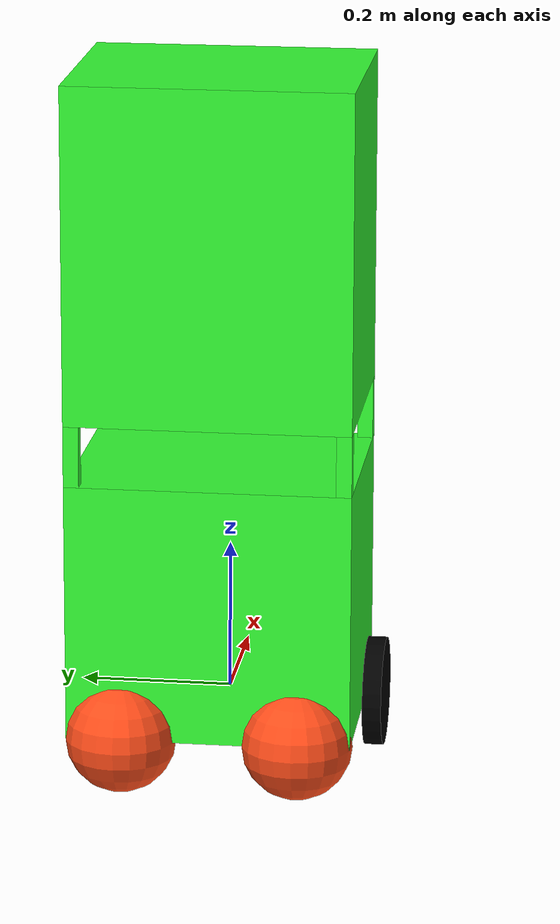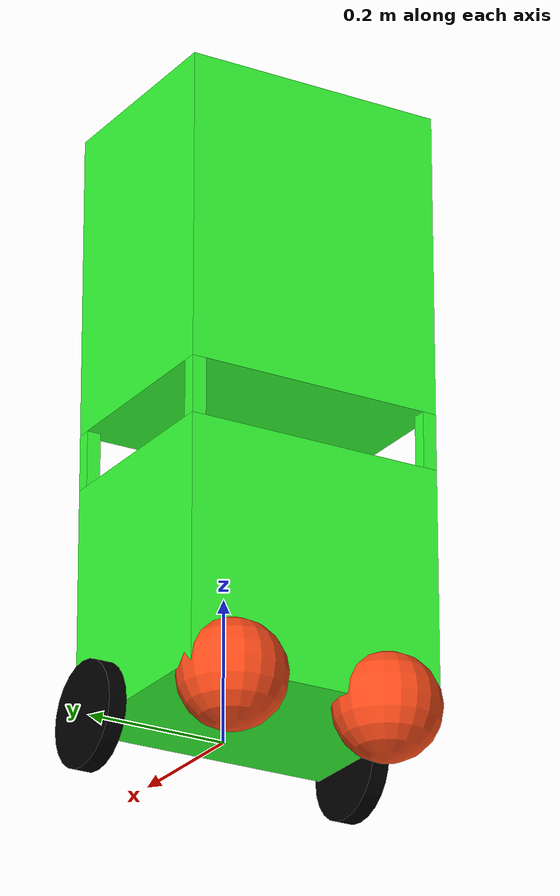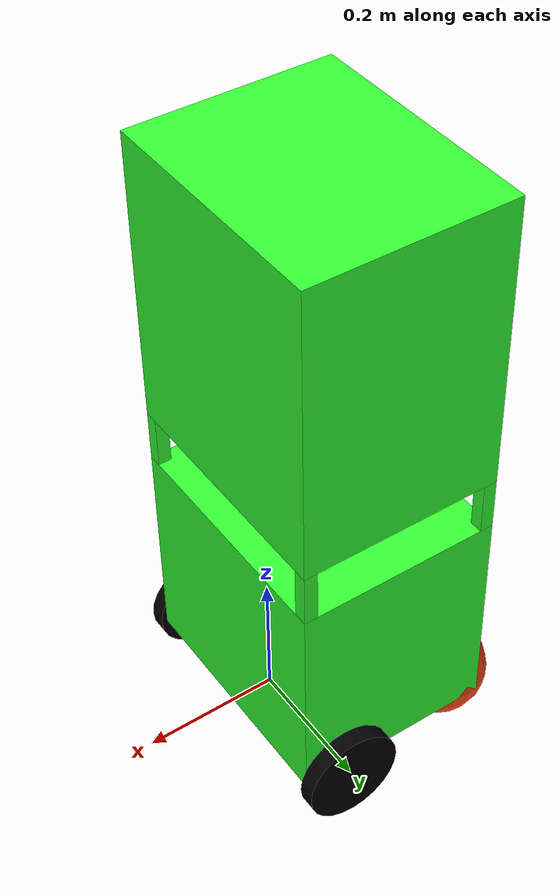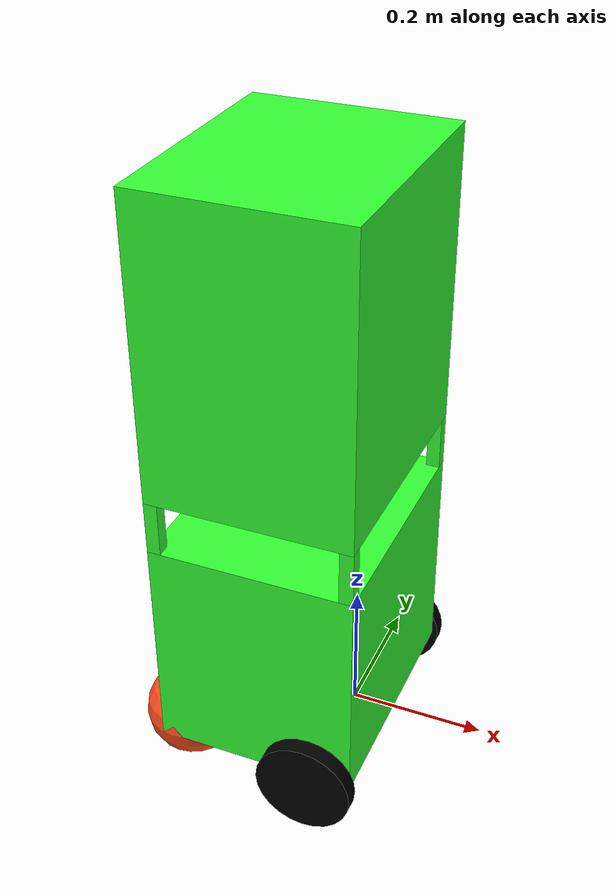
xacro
<?xml version="1.0"?>
<robot xmlns:xacro="http://www.ros.org/wiki/xacro">

    <xacro:include filename="inertial_macros.xacro"/>

    <material name="white">
        <color rgba="1 1 1 1"/>
    </material>

    <material name="black">
        <color rgba="0 0 0 1"/>
    </material>

    <material name="red">
        <color rgba="1 0.2 0.2 1"/>
    </material>

    <material name="blue">
        <color rgba="0.2 0.2 1 1"/>
    </material>

    <material name="green">
        <color rgba="0.2 1 0.2 1"/>
    </material>

    <material name="orange">
        <color rgba="1 0.3 0.1 1"/>
    </material>

    <material name="purple">
        <color rgba="0.2 1 0.2 1"/>
    </material>

    <link name="base_link">

    </link>

    <joint name="base_footprint_joint" type="fixed">
        <parent link="base_link"/>
        <child link="base_footprint"/>
        <origin xyz="0 0 0" rpy="0 0 0"/>
    </joint>

    <link name="base_footprint">
    </link>

    <joint name="chassis_joint" type="fixed">
        <parent link="base_link"/>
        <child link="chassis"/>
        <origin xyz="-0.2365 0 0"/>
    </joint>

    <link name="chassis">
        <visual>
            <origin xyz="0.15 0 0.17"/>
            <geometry>
                <box size="0.3 0.37 0.34"/>
            </geometry>
            <material name="green"/>
        </visual>
        <collision>
            <origin xyz="0.15 0 0.17"/>
            <geometry>
                <box size="0.3 0.37 0.34"/>
            </geometry>
        </collision>
        <xacro:inertial_box mass="14.0" x="0.3" y="0.37" z="0.34">
            <origin xyz="0.15 0 0.17" rpy="0 0 0"/>
        </xacro:inertial_box>
    </link>

    <joint name="left_wheel_joint" type="continuous">
        <parent link="base_link"/>
        <child link="left_wheel"/>
        <origin xyz="0 0.1975 0" rpy="-${pi/2} 0 0" />
        <axis xyz="0 0 1"/>
    </joint>

    <link name="left_wheel">
        <visual>
            <geometry>
                <cylinder radius="0.0725" length="0.025"/>
            </geometry>
            <material name="black"/>
        </visual>
        <collision>
            <geometry>
                <sphere radius="0.0725"/>
            </geometry>
        </collision>
        <xacro:inertial_cylinder mass="0.6" length="0.025" radius="0.0725">
            <origin xyz="0 0 0" rpy="0 0 0"/>
        </xacro:inertial_cylinder>
    </link>

    <joint name="right_wheel_joint" type="continuous">
        <parent link="base_link"/>
        <child link="right_wheel"/>
        <origin xyz="0 -0.1975 0" rpy="${pi/2} 0 0" />
        <axis xyz="0 0 -1"/>
    </joint>

    <link name="right_wheel">
        <visual>
            <geometry>
                <cylinder radius="0.0725" length="0.025"/>
            </geometry>
            <material name="black"/>
        </visual>
        <collision>
            <geometry>
                <sphere radius="0.0725"/>
            </geometry>
        </collision>
        <xacro:inertial_cylinder mass="0.6" length="0.025" radius="0.0725">
            <origin xyz="0 0 0" rpy="0 0 0"/>
        </xacro:inertial_cylinder>
    </link>

   <joint name="left_caster_wheel_joint" type="fixed">
       <parent link="chassis"/>
       <child link="left_caster_wheel"/>
       <origin xyz="0.017 0.115 0"/>
   </joint>

    <link name="left_caster_wheel">
        <visual>
            <geometry>
                <sphere radius="0.0725"/>
            </geometry>
            <material name="orange"/>
        </visual>
        <collision>
            <geometry>
                <sphere radius="0.0725"/>
            </geometry>
        </collision>
        <xacro:inertial_sphere mass="0.1" radius="0.0725">
            <origin xyz="0 0 0" rpy="0 0 0"/>
        </xacro:inertial_sphere>
    </link>

    <joint name="right_caster_wheel_joint" type="fixed">
       <parent link="chassis"/>
       <child link="right_caster_wheel"/>
       <origin xyz="0.017 -0.115 0"/>
   </joint>

    <link name="right_caster_wheel">
        <visual>
            <geometry>
                <sphere radius="0.0725"/>
            </geometry>
            <material name="orange"/>
        </visual>
        <collision>
            <geometry>
                <sphere radius="0.0725"/>
            </geometry>
        </collision>
        <xacro:inertial_sphere mass="0.1" radius="0.0725">
            <origin xyz="0 0 0" rpy="0 0 0"/>
        </xacro:inertial_sphere>
    </link>

    <joint name="pedestal1_joint" type="fixed">
        <parent link="chassis"/>
        <child link="pedestal1"/>
        <origin xyz="0.29 0.175 0.38"/>
    </joint>

    <link name="pedestal1">
        <visual>
            <geometry>
                <box size="0.02 0.02 0.08"/>
            </geometry>
            <material name="green"/>
        </visual>
        <collision>
            <geometry>
                <box size="0.02 0.02 0.08"/>
            </geometry>
            <material name="green"/>
        </collision>
        <xacro:inertial_box mass="0.01" x="0.02" y="0.02" z="0.08">
            <origin xyz="0 0 0" rpy="0 0 0"/>
        </xacro:inertial_box>
    </link>

    <joint name="pedestal2_joint" type="fixed">
        <parent link="chassis"/>
        <child link="pedestal2"/>
        <origin xyz="0.29 -0.175 0.38"/>
    </joint>

    <link name="pedestal2">
        <visual>
            <geometry>
                <box size="0.02 0.02 0.08"/>
            </geometry>
            <material name="green"/>
        </visual>
        <collision>
            <geometry>
                <box size="0.02 0.02 0.08"/>
            </geometry>
            <material name="green"/>
        </collision>
        <xacro:inertial_box mass="0.01" x="0.02" y="0.02" z="0.08">
            <origin xyz="0 0 0" rpy="0 0 0"/>
        </xacro:inertial_box>
    </link>

    <joint name="pedestal3_joint" type="fixed">
        <parent link="chassis"/>
        <child link="pedestal3"/>
        <origin xyz="0.01 0.175 0.38"/>
    </joint>

    <link name="pedestal3">
        <visual>
            <geometry>
                <box size="0.02 0.02 0.08"/>
            </geometry>
            <material name="green"/>
        </visual>
        <collision>
            <geometry>
                <box size="0.02 0.02 0.08"/>
            </geometry>
            <material name="green"/>
        </collision>
        <xacro:inertial_box mass="0.01" x="0.02" y="0.02" z="0.08">
            <origin xyz="0 0 0" rpy="0 0 0"/>
        </xacro:inertial_box>
    </link>

    <joint name="pedestal4_joint" type="fixed">
        <parent link="chassis"/>
        <child link="pedestal4"/>
        <origin xyz="0.01 -0.175 0.38"/>
    </joint>

    <link name="pedestal4">
        <visual>
            <geometry>
                <box size="0.02 0.02 0.08"/>
            </geometry>
            <material name="green"/>
        </visual>
        <collision>
            <geometry>
                <box size="0.02 0.02 0.08"/>
            </geometry>
            <material name="green"/>
        </collision>
        <xacro:inertial_box mass="0.01" x="0.02" y="0.02" z="0.08">
            <origin xyz="0 0 0" rpy="0 0 0"/>
        </xacro:inertial_box>
    </link>

    <joint name="chassis2_joint" type="fixed">
        <parent link="chassis"/>
        <child link="chassis2"/>
        <origin xyz="0.15 0 0.64"/>
    </joint>

    <link name="chassis2">
        <visual>
            <geometry>
                <box size="0.3 0.37 0.44"/>
            </geometry>
            <material name="green"/>
        </visual>
        <collision>
            <geometry>
                <box size="0.3 0.37 0.44"/>
            </geometry>
            <material name="green"/>
        </collision>
        <xacro:inertial_box mass="5" x="0.3" y="0.37" z="0.44">
            <origin xyz="0 0 0" rpy="0 0 0"/>
        </xacro:inertial_box>
    </link>

    <gazebo reference="chassis">
        <material>Gazebo/Green</material>
    </gazebo>

    <gazebo reference="left_wheel">
        <material>Gazebo/Black</material>
    </gazebo>

    <gazebo reference="right_wheel">
        <material>Gazebo/Black</material>
    </gazebo>

    <gazebo reference="left_caster_wheel">
        <material>Gazebo/Orange</material>
        <mu1 value="0.001"/>
        <mu2 value="0.001"/>
    </gazebo>

    <gazebo reference="right_caster_wheel">
        <material>Gazebo/Orange</material>
        <mu1 value="0.001"/>
        <mu2 value="0.001"/>
    </gazebo>

    <gazebo reference="pedestal1">
        <material>Gazebo/Green</material>
    </gazebo>
    <gazebo reference="pedestal2">
        <material>Gazebo/Green</material>
    </gazebo>
    <gazebo reference="pedestal3">
        <material>Gazebo/Green</material>
    </gazebo>
    <gazebo reference="pedestal4">
        <material>Gazebo/Green</material>
    </gazebo>
    <gazebo reference="chassis2">
        <material>Gazebo/Green</material>
    </gazebo>

</robot>
